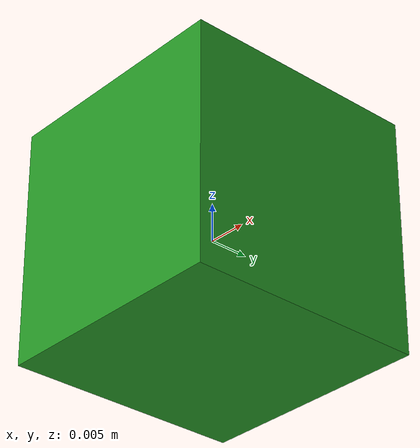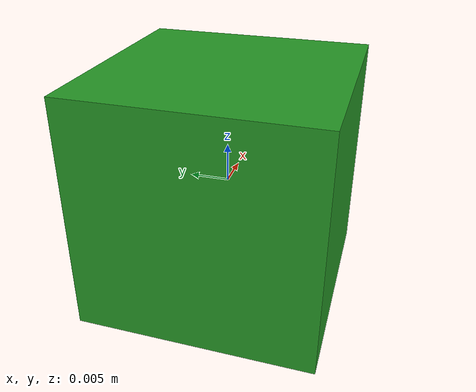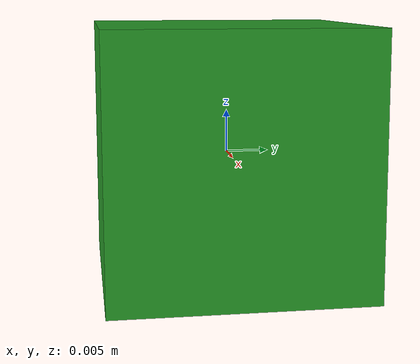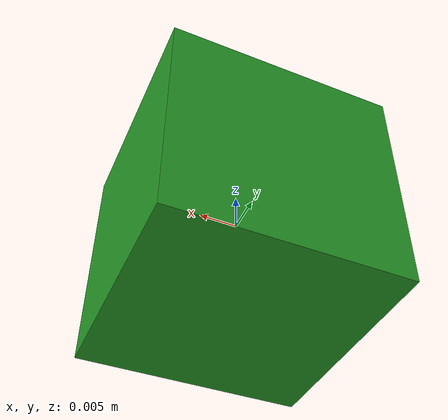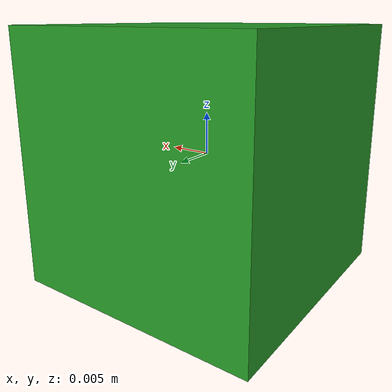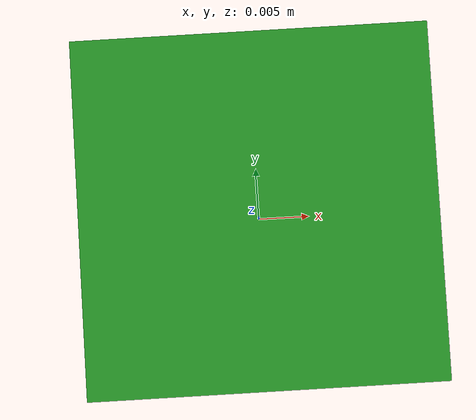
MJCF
<mujoco model="cube">
  <asset>
    <material name="cube_mat" rgba="0.15 0.6 0.15 1" specular="0.3" shininess="0.3"/>
  </asset>
  <worldbody>
    <body name="cube" pos="0 0 0">
      <freejoint/>
      <geom name="cube_geom" type="box" size="0.015 0.015 0.015" rgba="0 0 0 0"
            mass="0.02" friction="1.0 0.02 0.001"/>
      <geom name="cube_visual" type="box" size="0.0152 0.0152 0.0152"
            material="cube_mat" contype="0" conaffinity="0" mass="0"/>
    </body>
  </worldbody>
</mujoco>
